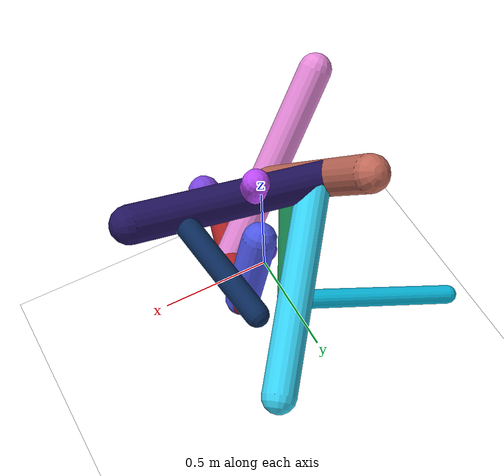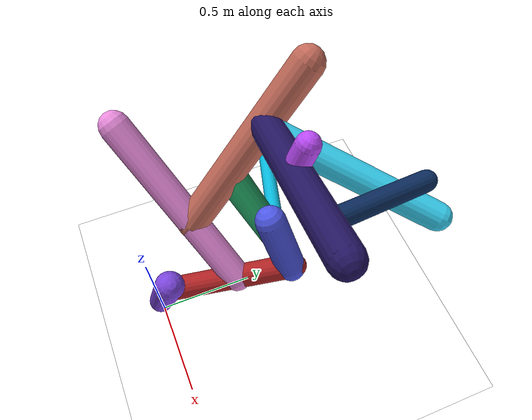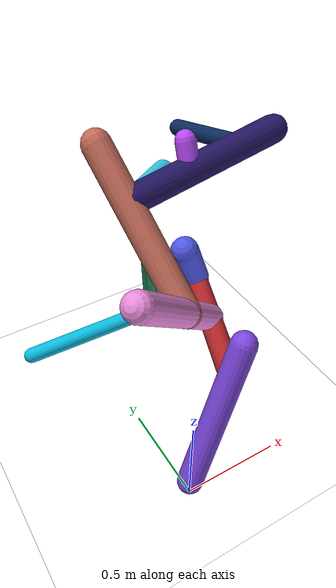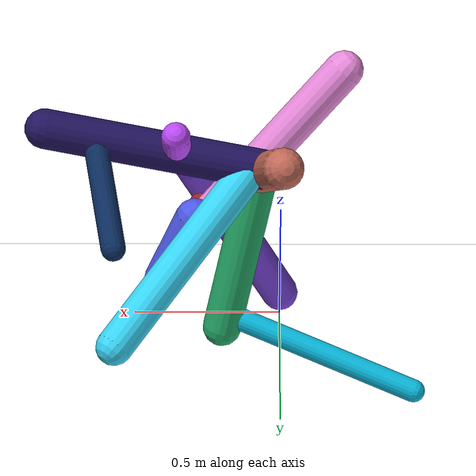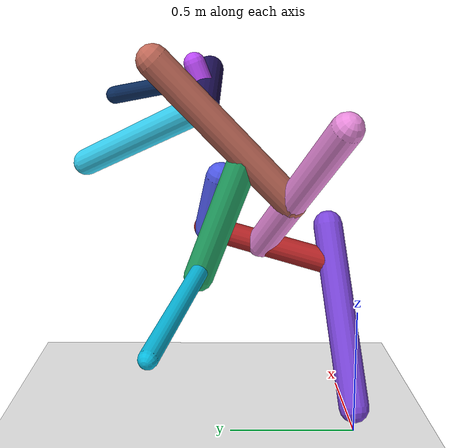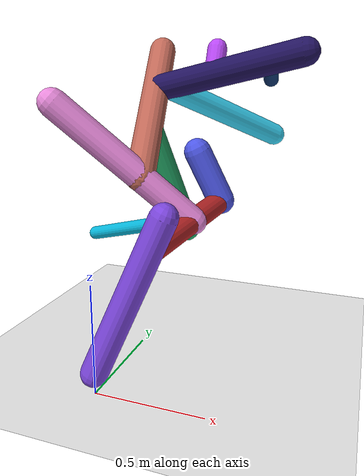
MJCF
<mujoco model="morphology">
  <option timestep="0.01"/>
  <default>
    <default class="/"/>
    <default class="0/"/>
    <default class="0/1/"/>
    <default class="0/1/2/"/>
    <default class="0/1/3/"/>
    <default class="0/1/3/4/"/>
    <default class="0/1/3/4/5/"/>
    <default class="0/1/3/4/5/6/"/>
    <default class="0/1/3/4/7/"/>
    <default class="0/1/3/4/7/8/"/>
    <default class="0/1/3/4/7/9/"/>
    <default class="0/1/3/4/7/10/"/>
  </default>
  <asset>
    <texture name="texplane" type="2d" builtin="checker" rgb1="0.10000000000000001 0.20000000000000001 0.29999999999999999" rgb2="0.20000000000000001 0.29999999999999999 0.40000000000000002" width="300" height="300"/>
    <material name="MatPlane" class="/" texture="texplane" texrepeat="20 20" specular="1" shininess="1" reflectance="0.5"/>
  </asset>
  <worldbody>
    <light name="//unnamed_light_0" class="/" directional="true" pos="0 0 1.5" dir="0 0 -1.3" cutoff="100" exponent="1" diffuse="1 1 1" specular="0.10000000000000001 0.10000000000000001 0.10000000000000001"/>
    <geom name="ground" class="/" type="plane" size="15 15 0.5" material="MatPlane" rgba="1 1 1 1"/>
    <site name="body" class="/" size="9.9999999999999995e-07 9.9999999999999995e-07 9.9999999999999995e-07" pos="0 0 0.10000000000000001"/>
    <body pos="0 0 0.10000000000000001" name="0/">
      <freejoint name="0/"/>
      <geom name="0/geom" class="0/" type="capsule" contype="1" conaffinity="1" condim="3" size="0.06181276182615579" rgba="0.48720954031082098 0.27504264848455029 0.87078017761788573 1" friction="0.59999999999999998 0.10000000000000001 0.10000000000000001" fromto="0 0 0 0.29462123323665779 0.085013521291679273 0.69715608204467694"/>
      <site name="0/end0" class="0/" size="0.0050000000000000001" pos="0.29462123323665779 0.085013521291679273 0.69715608204467694"/>
      <site name="0/attach1" class="0/" size="9.9999999999999995e-07 9.9999999999999995e-07 9.9999999999999995e-07" pos="0.23087764621551726 0.066620187135492323 0.54632096098116578"/>
      <body pos="0.23087764621551726 0.066620187135492323 0.54632096098116578" name="0/1/">
        <geom name="0/1/geom" class="0/1/" type="capsule" contype="1" conaffinity="1" condim="3" size="0.052776513839980499" rgba="0.6876695048949083 0.13802295022899935 0.14437039737275148 1" friction="0.59999999999999998 0.10000000000000001 0.10000000000000001" fromto="0 0 0 0.15890996760557852 0.53688917032509487 0.12351988748768272"/>
        <site name="0/1/end1" class="0/1/" size="0.0050000000000000001" pos="0.15890996760557852 0.53688917032509487 0.12351988748768272"/>
        <site name="0/1/attach2" class="0/1/" size="9.9999999999999995e-07 9.9999999999999995e-07 9.9999999999999995e-07" pos="0.15455191110985747 0.5221651516151733 0.12013239294515957"/>
        <body pos="0.15455191110985747 0.5221651516151733 0.12013239294515957" name="0/1/2/">
          <joint name="0/1/2/joint/" class="0/1/" type="hinge" axis="-0.96082719995462373 0.27009226952194026 0.062139019720665767" limited="true" range="-68.333572341581785 68.333572341581785"/>
          <geom name="0/1/2/geom" class="0/1/2/" type="capsule" contype="1" conaffinity="1" condim="3" size="0.063994435101423455" rgba="0.30696173798796067 0.34887495751161568 0.91114955281821375 1" friction="0.59999999999999998 0.10000000000000001 0.10000000000000001" fromto="0 0 0 -0.10368523337831514 -0.049131893021514328 0.23613398542380293"/>
          <site name="0/1/2/end2" class="0/1/2/" size="0.0050000000000000001" pos="-0.10368523337831514 -0.049131893021514328 0.23613398542380293"/>
        </body>
        <site name="0/1/attach3" class="0/1/" size="9.9999999999999995e-07 9.9999999999999995e-07 9.9999999999999995e-07" pos="0.088432097936105986 0.29877443439461604 0.068737807652690608"/>
        <body pos="0.088432097936105986 0.29877443439461604 0.068737807652690608" name="0/1/3/">
          <geom name="0/1/3/geom" class="0/1/3/" type="capsule" contype="1" conaffinity="1" condim="3" size="0.063051010954659134" rgba="0.91816186685122791 0.54628363406473224 0.86707005862048492 1" friction="0.59999999999999998 0.10000000000000001 0.10000000000000001" fromto="0 0 0 -0.51796362234814586 -0.27038652249934819 0.5215898718881431"/>
          <site name="0/1/3/end3" class="0/1/3/" size="0.0050000000000000001" pos="-0.51796362234814586 -0.27038652249934819 0.5215898718881431"/>
          <site name="0/1/3/attach4" class="0/1/3/" size="9.9999999999999995e-07 9.9999999999999995e-07 9.9999999999999995e-07" pos="-0.20409931039711529 -0.10654358800838402 0.20552820423928522"/>
          <body pos="-0.20409931039711529 -0.10654358800838402 0.20552820423928522" name="0/1/3/4/">
            <joint name="0/1/3/4/joint/" class="0/1/3/" type="hinge" axis="0.75010712090719989 -0.30435539546847518 0.58711762059534467" limited="true" range="-68.731247959585289 68.731247959585289"/>
            <geom name="0/1/3/4/geom" class="0/1/3/4/" type="capsule" contype="1" conaffinity="1" condim="3" size="0.065050064478710548" rgba="0.7613900879864286 0.41584365584107741 0.35061609775899294 1" friction="0.59999999999999998 0.10000000000000001 0.10000000000000001" fromto="0 0 0 -0.11005670557844227 0.5372478351512171 0.55500188456044919"/>
            <site name="0/1/3/4/end4" class="0/1/3/4/" size="0.0050000000000000001" pos="-0.11005670557844227 0.5372478351512171 0.55500188456044919"/>
            <site name="0/1/3/4/attach5" class="0/1/3/4/" size="9.9999999999999995e-07 9.9999999999999995e-07 9.9999999999999995e-07" pos="-0.038240127788441838 0.18667127788595633 0.19284007164189382"/>
            <body pos="-0.038240127788441838 0.18667127788595633 0.19284007164189382" name="0/1/3/4/5/">
              <joint name="0/1/3/4/5/joint/" class="0/1/3/4/" type="hinge" axis="-0.99000177555521052 -0.098106670660629558 -0.10134873245096493" limited="true" range="-48.749627992438604 48.749627992438604"/>
              <geom name="0/1/3/4/5/geom" class="0/1/3/4/5/" type="capsule" contype="1" conaffinity="1" condim="3" size="0.062494564824765356" rgba="0.14369536352279488 0.66907539656156312 0.40989148270045928 1" friction="0.59999999999999998 0.10000000000000001 0.10000000000000001" fromto="0 0 0 0.11883668691993721 0.18739411976196907 -0.51767233128740231"/>
              <site name="0/1/3/4/5/end5" class="0/1/3/4/5/" size="0.0050000000000000001" pos="0.11883668691993721 0.18739411976196907 -0.51767233128740231"/>
              <site name="0/1/3/4/5/attach6" class="0/1/3/4/5/" size="9.9999999999999995e-07 9.9999999999999995e-07 9.9999999999999995e-07" pos="0.10800175520599506 0.17030846596397017 -0.47047357049162969"/>
              <body pos="0.10800175520599506 0.17030846596397017 -0.47047357049162969" name="0/1/3/4/5/6/">
                <joint name="0/1/3/4/5/6/joint/" class="0/1/3/4/5/" type="hinge" axis="1.1102230246251565e-16 0.94028850377468676 0.3403785094114502" limited="true" range="-38.112377099556369 38.112377099556369"/>
                <geom name="0/1/3/4/5/6/geom" class="0/1/3/4/5/6/" type="capsule" contype="1" conaffinity="1" condim="3" size="0.037061678143040677" rgba="0.034467695494103667 0.73169530420541251 0.87351182638388769 1" friction="0.59999999999999998 0.10000000000000001 0.10000000000000001" fromto="0 0 0 -0.61097267715492132 0.17818545739496716 -0.17919154278470395"/>
                <site name="0/1/3/4/5/6/end6" class="0/1/3/4/5/6/" size="0.0050000000000000001" pos="-0.61097267715492132 0.17818545739496716 -0.17919154278470395"/>
              </body>
            </body>
            <site name="0/1/3/4/attach7" class="0/1/3/4/" size="9.9999999999999995e-07 9.9999999999999995e-07 9.9999999999999995e-07" pos="-0.07276820371588931 0.35522197133494843 0.36696074070300072"/>
            <body pos="-0.07276820371588931 0.35522197133494843 0.36696074070300072" name="0/1/3/4/7/">
              <geom name="0/1/3/4/7/geom" class="0/1/3/4/7/" type="capsule" contype="1" conaffinity="1" condim="3" size="0.063307073408393782" rgba="0.13806768338226871 0.079595028468552598 0.37467340013229511 1" friction="0.59999999999999998 0.10000000000000001 0.10000000000000001" fromto="0 0 0 0.70522535140889064 -0.0249532369701293 0.15829956676686141"/>
              <site name="0/1/3/4/7/end7" class="0/1/3/4/7/" size="0.0050000000000000001" pos="0.70522535140889064 -0.0249532369701293 0.15829956676686141"/>
              <site name="0/1/3/4/7/attach8" class="0/1/3/4/7/" size="9.9999999999999995e-07 9.9999999999999995e-07 9.9999999999999995e-07" pos="0.55019048897097844 -0.019467583833417845 0.12349941174031304"/>
              <body pos="0.55019048897097844 -0.019467583833417845 0.12349941174031304" name="0/1/3/4/7/8/">
                <joint name="0/1/3/4/7/8/joint/" class="0/1/3/4/7/" type="hinge" axis="0.22158920170602098 0.15183937908977146 -0.9632460893483662" limited="true" range="-60.472695758367735 60.472695758367735"/>
                <geom name="0/1/3/4/7/8/geom" class="0/1/3/4/7/8/" type="capsule" contype="1" conaffinity="1" condim="3" size="0.038604259314929529" rgba="0.040605008756350203 0.1682249910406487 0.3608592493714996 1" friction="0.59999999999999998 0.10000000000000001 0.10000000000000001" fromto="0 0 0 -0.065048117026971886 0.41065333491356948 -0.07607511807764078"/>
                <site name="0/1/3/4/7/8/end8" class="0/1/3/4/7/8/" size="0.0050000000000000001" pos="-0.065048117026971886 0.41065333491356948 -0.07607511807764078"/>
              </body>
              <site name="0/1/3/4/7/attach9" class="0/1/3/4/7/" size="9.9999999999999995e-07 9.9999999999999995e-07 9.9999999999999995e-07" pos="0.29359868728296551 -0.010388505749622383 0.065903111547766097"/>
              <body pos="0.29359868728296551 -0.010388505749622383 0.065903111547766097" name="0/1/3/4/7/9/">
                <geom name="0/1/3/4/7/9/geom" class="0/1/3/4/7/9/" type="capsule" contype="1" conaffinity="1" condim="3" size="0.045554751081140057" rgba="0.73791241354407644 0.29024600138582979 0.97377654818683168 1" friction="0.59999999999999998 0.10000000000000001 0.10000000000000001" fromto="0 0 0 0.001844831701268479 0.045771581461402144 0.1164629309316203"/>
                <site name="0/1/3/4/7/9/end9" class="0/1/3/4/7/9/" size="0.0050000000000000001" pos="0.001844831701268479 0.045771581461402144 0.1164629309316203"/>
              </body>
              <site name="0/1/3/4/7/attach10" class="0/1/3/4/7/" size="9.9999999999999995e-07 9.9999999999999995e-07 9.9999999999999995e-07" pos="0.060478625350946481 -0.0021399364997229612 0.013575433969558593"/>
              <body pos="0.060478625350946481 -0.0021399364997229612 0.013575433969558593" name="0/1/3/4/7/10/">
                <geom name="0/1/3/4/7/10/geom" class="0/1/3/4/7/10/" type="capsule" contype="1" conaffinity="1" condim="3" size="0.058219758664378958" rgba="0.21771705526083618 0.83014671410189034 0.96201196881306084 1" friction="0.59999999999999998 0.10000000000000001 0.10000000000000001" fromto="0 0 0 0.42508628778568469 0.52708394773493206 -0.26266001782886234"/>
                <site name="0/1/3/4/7/10/end10" class="0/1/3/4/7/10/" size="0.0050000000000000001" pos="0.42508628778568469 0.52708394773493206 -0.26266001782886234"/>
              </body>
            </body>
          </body>
        </body>
      </body>
      <camera name="0/iso" class="0/" mode="trackcom" pos="-2.2999999999999998 -2.2999999999999998 1" xyaxes="0.45000000000000001 -0.45000000000000001 0 0.29999999999999999 0.14999999999999999 0.93999999999999995"/>
    </body>
  </worldbody>
  <actuator>
    <motor name="0/1/2/motor" class="0/1/2/" ctrllimited="true" ctrlrange="-1 1" gear="62" joint="0/1/2/joint/"/>
    <motor name="0/1/3/4/motor" class="0/1/3/4/" ctrllimited="true" ctrlrange="-1 1" gear="95" joint="0/1/3/4/joint/"/>
    <motor name="0/1/3/4/5/motor" class="0/1/3/4/5/" ctrllimited="true" ctrlrange="-1 1" gear="92" joint="0/1/3/4/5/joint/"/>
    <motor name="0/1/3/4/5/6/motor" class="0/1/3/4/5/6/" ctrllimited="true" ctrlrange="-1 1" gear="61" joint="0/1/3/4/5/6/joint/"/>
    <motor name="0/1/3/4/7/8/motor" class="0/1/3/4/7/8/" ctrllimited="true" ctrlrange="-1 1" gear="65" joint="0/1/3/4/7/8/joint/"/>
  </actuator>
  <sensor>
    <subtreelinvel name="velocity" body="0/"/>
  </sensor>
</mujoco>
